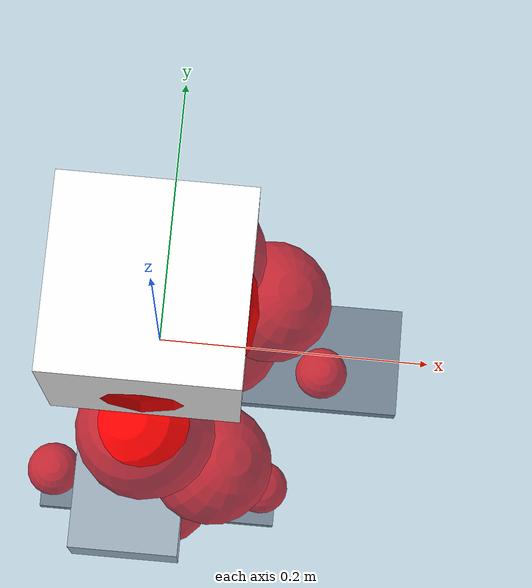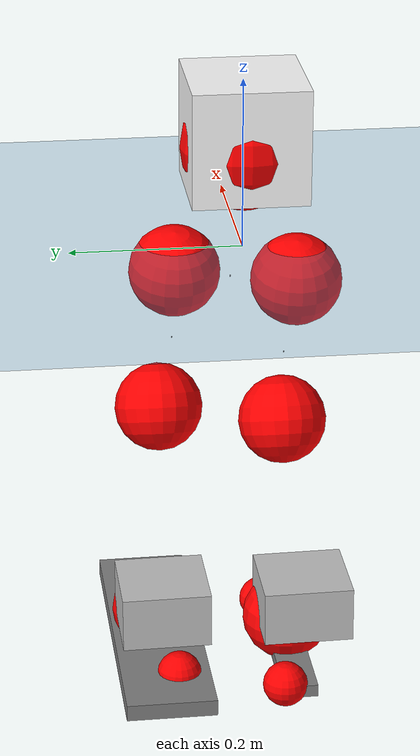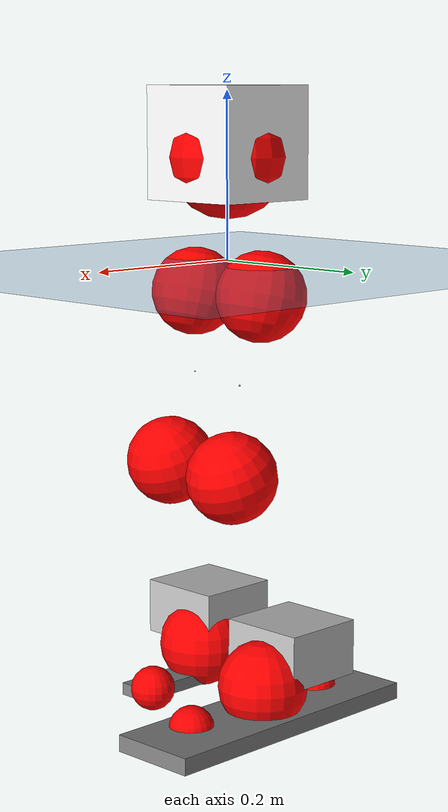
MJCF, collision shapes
<mujoco model="pi_12dof_release_v1">
  <compiler angle="radian" assetdir="assets" balanceinertia="true" inertiafromgeom="false"/>

  <option timestep="0.005" density="1.2" viscosity="2e-05"/>

  <size nkey="1"/>

  <visual>
    <quality shadowsize="8192"/>
    <map shadowclip="0.5"/>
  </visual>

  <default>
    <default class="/">
      <joint armature="0.01" damping="0.01" frictionloss="0.01"/>
      <geom contype="0" conaffinity="0" group="1" solref="-1000 -80"/>
      <site size="0.01 0.005 0.005" group="5"/>
      <general forcelimited="true" biastype="affine" gainprm="20" biasprm="0 -20 -0.5"/>
      <default class="foot">
        <geom size="0.0845 0.036 0.005" type="box" condim="6" group="4" priority="1" friction="0.9 0.2 0.2" solimp="0.015 1 0.005"/>
      </default>
      <default class="reward_collision_sphere">
        <geom group="5" rgba="1 0 0 1"/>
      </default>
    </default>
  </default>

  <asset>
    <texture type="skybox" colorspace="auto" name="//unnamed_texture_0" builtin="gradient" rgb1="0.95 0.95 0.95" rgb2="0.95 0.95 0.95" width="100" height="600"/>
    <texture type="2d" colorspace="auto" name="texplane" builtin="checker" rgb1="0.345 0.575 0.748" rgb2="0.345 0.575 0.748" markrgb="1 1 1" width="512" height="512"/>
    <material name="MatPlane" class="/" texture="texplane" texuniform="true" texrepeat="2 2" specular="0.9"/>
    <mesh name="baselink_1" class="/" file="baselink_1.STL"/>
    <mesh name="r_hip_pitch_link" class="/" file="r_hip_pitch_link.STL"/>
    <mesh name="r_hip_roll_link" class="/" file="r_hip_roll_link.STL"/>
    <mesh name="r_thigh_link" class="/" file="r_thigh_link.STL"/>
    <mesh name="r_calf_link" class="/" file="r_calf_link.STL"/>
    <mesh name="r_ankle_pitch_link" class="/" file="r_ankle_pitch_link.STL"/>
    <mesh name="r_ankle_roll_link" class="/" file="r_ankle_roll_link.STL"/>
    <mesh name="l_hip_pitch_link" class="/" file="l_hip_pitch_link.STL"/>
    <mesh name="l_hip_roll_link" class="/" file="l_hip_roll_link.STL"/>
    <mesh name="l_thigh_link" class="/" file="l_thigh_link.STL"/>
    <mesh name="l_calf_link" class="/" file="l_calf_link.STL"/>
    <mesh name="l_ankle_pitch_link" class="/" file="l_ankle_pitch_link.STL"/>
    <mesh name="l_ankle_roll_link" class="/" file="l_ankle_roll_link.STL"/>
  </asset>

  <worldbody>
    <geom name="floor" class="/" size="100 100 0.125" type="plane" group="0" material="MatPlane"/>
    <light name="toplight_shadow" class="/" pos="0 0 5" dir="0.0990148 0.0990148 -0.990148" type="directional" ambient="0.04 0.04 0.04" diffuse="0.55 0.55 0.55" specular="0.12 0.12 0.12"/>
    <light name="toplight_fill" class="/" pos="0 0 5" dir="0.0990148 0.0990148 -0.990148" type="directional" castshadow="false" ambient="0.04 0.04 0.04" diffuse="0.3 0.3 0.3" specular="0.08 0.08 0.08"/>
    <body name="trunk" pos="-0.00155855 -0.00108261 0.00996614" quat="1 0.000461806 -0.000375352 0.000786933">
      <inertial pos="0.0148329 0.012669 0.058165" quat="0.679681 -0.000617896 0.0245454 0.733096" mass="5.16322" diaginertia="0.0666829 0.00353055 0.0385757"/>
      <joint name="//unnamed_joint_0" type="free"/>
      <geom name="//unnamed_geom_1" class="/" type="mesh" density="0" rgba="1 1 1 1" mesh="baselink_1"/>
      <geom name="//unnamed_geom_2" class="/" size="0.0669492 0.0669492 0.0669492" pos="0 0 0.128748" type="box" rgba="1 1 1 1"/>
      <geom name="//unnamed_geom_3" class="reward_collision_sphere" size="0.0736441" pos="0 0 0.112655"/>
      <site name="imu" class="/" pos="0.0740957 0.0123538 -0.0631698" size="0.0133898"/>
      <camera name="track" class="/" pos="0 -1.71833 0" quat="0.707107 0.707107 0 0" mode="trackcom"/>
      <camera name="ego_camera" class="/" pos="0.116132 0 0.289683" quat="-0.5 -0.5 0.5 0.5"/>
      <body name="r_hip_pitch_link" pos="-0.00260757 -0.0140208 -0.0526337" quat="0.992445 -0.00245125 -0.122654 -0.00186312">
        <inertial pos="-0.0114797 -0.0399596 0.000572916" quat="0.00291097 0.701273 0.00859747 0.712835" mass="1.04061" diaginertia="0.00113688 4.59373e-05 0.000841919"/>
        <joint name="r_hip_pitch_joint" class="/" pos="0 0 0" axis="0.0400373 -0.997096 -0.0647796" range="-1.72508 1.52265" armature="0.0182763" damping="0.0867807" frictionloss="0.0171602"/>
        <geom name="//unnamed_geom_4" class="/" type="mesh" density="0" rgba="0.75294 0.75294 0.75294 1" mesh="r_hip_pitch_link"/>
        <geom name="//unnamed_geom_5" class="/" size="0.000669492 0.000669492 0.000669492" type="box" rgba="0.75294 0.75294 0.75294 1"/>
        <body name="r_hip_roll_link" pos="-0.0016577 -0.0474237 0.00141956" quat="1 3.86161e-05 0.000291955 0.000743458">
          <inertial pos="-0.00930806 -0.00054797 -0.11105" quat="0.696102 -0.0989281 -0.0844214 0.706065" mass="0.817586" diaginertia="0.00341969 0.000127726 0.00142107"/>
          <joint name="r_hip_roll_joint" class="/" pos="0 0 0" axis="-0.99733 0.0672239 -0.0285139" stiffness="0.0185716" range="0.139997 0.37947" armature="0.0180463" damping="0.00294651" frictionloss="0.00635412"/>
          <geom name="//unnamed_geom_6" class="/" type="mesh" density="0" rgba="0.75294 0.75294 0.75294 1" mesh="r_hip_roll_link"/>
          <geom name="//unnamed_geom_7" class="/" size="0.000669492 0.000669492 0.000669492" type="box" rgba="0.75294 0.75294 0.75294 1"/>
          <geom name="//unnamed_geom_8" class="reward_collision_sphere" size="0.0535593"/>
          <body name="r_thigh_link" pos="-0.011894 0.0118937 -0.0966227" quat="0.999984 -0.0022484 -0.00101971 0.00517848">
            <inertial pos="0.00409212 -0.00012327 -0.0723051" quat="0.735824 0.676822 0.00137735 0.0217472" mass="0.299939" diaginertia="0.00123168 4.43188e-05 0.000721042"/>
            <joint name="r_thigh_joint" class="/" pos="0 0 0" axis="0.0242646 -0.0395414 -0.998923" range="-0.416113 0.480745" armature="0.0145042" damping="0.000785013" frictionloss="0.0114616"/>
            <geom name="//unnamed_geom_9" class="/" type="mesh" density="0" rgba="0.75294 0.75294 0.75294 1" mesh="r_thigh_link"/>
            <geom name="//unnamed_geom_10" class="/" size="0.000669492 0.000669492 0.000669492" type="box" rgba="0.75294 0.75294 0.75294 1"/>
            <body name="r_calf_link" pos="0.00934322 -0.00422843 -0.111384" quat="0.94758 3.52857e-05 0.319518 7.57105e-05">
              <inertial pos="-0.0129071 0.000969339 -0.11353" quat="0.99998 -0.00379158 -0.00134365 0.00482811" mass="1.82462" diaginertia="0.0301838 0.00130056 0.00169268"/>
              <joint name="r_calf_joint" class="/" pos="0 0 0" axis="-0.0280916 -0.998841 -0.0390937" stiffness="0.0115991" range="-1.6274 0.484949" armature="0.0197688" damping="0" frictionloss="0.018406"/>
              <geom name="//unnamed_geom_11" class="/" type="mesh" density="0" rgba="0.75294 0.75294 0.75294 1" mesh="r_calf_link"/>
              <geom name="//unnamed_geom_12" class="/" size="0.000669492 0.000669492 0.000669492" type="box" rgba="0.75294 0.75294 0.75294 1"/>
              <geom name="//unnamed_geom_13" class="reward_collision_sphere" size="0.0535593"/>
              <body name="r_ankle_pitch_link" pos="0.00683054 -0.0135046 -0.21772" quat="0.980105 0.00146165 -0.198471 -0.000808035">
                <inertial pos="0.00752014 0.000333004 0.00145775" quat="0.00822756 0.73914 -0.0410325 0.672251" mass="0.562152" diaginertia="0.00304778 0.000104403 0.00133756"/>
                <joint name="r_ankle_pitch_joint" class="/" pos="0 0 0" axis="-0.0103972 -0.99979 -0.0176856" stiffness="0.0506612" range="-1.21467 0.434569" armature="0.0157947" damping="0.0746531" frictionloss="0.0138749"/>
                <geom name="//unnamed_geom_14" class="/" type="mesh" density="0" rgba="0.75294 0.75294 0.75294 1" mesh="r_ankle_pitch_link"/>
                <geom name="//unnamed_geom_15" class="/" size="0.0522204 0.0535593 0.0334746" type="box" rgba="0.75294 0.75294 0.75294 1"/>
                <body name="r_ankle_roll_link" pos="0.103874 0.0160241 -0.00635026" quat="1 -0.000437526 -0.000116463 0.000520048">
                  <inertial pos="-0.0377151 0.00103946 -0.0367659" quat="0.54217 0.405671 0.443515 0.587178" mass="1.26999" diaginertia="0.0117422 0.000544169 0.00298498"/>
                  <joint name="r_ankle_roll_joint" class="/" pos="0 0 0" axis="-0.999998 0.000188452 0.00177823" range="0.0406062 0.0264504" armature="0.0100362" damping="0.0764896" frictionloss="0.00518178"/>
                  <geom name="//unnamed_geom_16" class="/" type="mesh" density="0" rgba="0.75294 0.75294 0.75294 1" mesh="r_ankle_roll_link"/>
                  <geom name="//unnamed_geom_17" class="/" type="mesh" rgba="0.75294 0.75294 0.75294 1" mesh="r_ankle_roll_link"/>
                  <geom name="right_foot" class="foot" size="0.117456 0.0207357 0.00747683" pos="-0.07897 0 -0.0708115"/>
                  <geom name="//unnamed_geom_19" class="reward_collision_sphere" size="0.0535593" pos="-0.0774216 0 -0.032187"/>
                  <geom name="//unnamed_geom_20" class="reward_collision_sphere" size="0.0267797" pos="0.0232265 0.0171833 -0.0643741"/>
                  <geom name="//unnamed_geom_21" class="reward_collision_sphere" size="0.0267797" pos="-0.185812 0.0171833 -0.0643741"/>
                  <site name="right_foot" class="foot" pos="-0.07897 0 -0.0708115" size="0.0133898"/>
                </body>
              </body>
            </body>
          </body>
        </body>
      </body>
      <body name="l_hip_pitch_link" pos="0.0144709 0.0132623 -0.0518821" quat="0.9924 0.0014527 -0.123038 0.000949484">
        <inertial pos="-0.00568406 0.0336063 -0.00126594" quat="-0.0259108 0.716649 0.0684766 0.69358" mass="0.933203" diaginertia="0.00140779 4.64999e-05 0.00144943"/>
        <joint name="l_hip_pitch_joint" class="/" pos="0 0 0" axis="0.0183466 0.998558 0.0504566" stiffness="0.0239574" range="-0.98834 1.69417" armature="0.00409636" damping="0.073873" frictionloss="0.0155265"/>
        <geom name="//unnamed_geom_22" class="/" type="mesh" density="0" rgba="0.75294 0.75294 0.75294 1" mesh="l_hip_pitch_link"/>
        <geom name="//unnamed_geom_23" class="/" size="0.000669492 0.000669492 0.000669492" type="box" rgba="0.75294 0.75294 0.75294 1"/>
        <body name="l_hip_roll_link" pos="0.00928611 0.064317 0.00424597" quat="1 -0.000312505 -0.000759145 -2.50427e-05">
          <inertial pos="-0.00105739 -0.0112913 -0.0951278" quat="0.699671 -0.081939 -0.0783068 0.705418" mass="0.928679" diaginertia="0.00294336 0.000144953 0.00130624"/>
          <joint name="l_hip_roll_joint" class="/" pos="0 0 0" axis="-0.997366 -0.044345 0.0574035" range="-0.792499 -0.0712182" armature="0.0115576" damping="0.0320243" frictionloss="0.021842"/>
          <geom name="//unnamed_geom_24" class="/" type="mesh" density="0" rgba="0.75294 0.75294 0.75294 1" mesh="l_hip_roll_link"/>
          <geom name="//unnamed_geom_25" class="/" size="0.000669492 0.000669492 0.000669492" type="box" rgba="0.75294 0.75294 0.75294 1"/>
          <geom name="//unnamed_geom_26" class="reward_collision_sphere" size="0.0535593"/>
          <body name="l_thigh_link" pos="0.00941416 -0.000702018 -0.10541" quat="0.999995 0.000408653 -0.00283416 -0.00133801">
            <inertial pos="0.000699609 0.00047943 -0.0765245" quat="0.646098 0.760118 -0.0550942 0.0417378" mass="0.27134" diaginertia="0.00110787 4.35305e-05 0.000748969"/>
            <joint name="l_thigh_joint" class="/" pos="0 0 0" axis="0.0298791 -0.00701832 -0.999529" range="-0.426617 0.115478" armature="0.00859474" damping="0.0653916" frictionloss="0.00725286"/>
            <geom name="//unnamed_geom_27" class="/" type="mesh" density="0" rgba="0.75294 0.75294 0.75294 1" mesh="l_thigh_link"/>
            <geom name="//unnamed_geom_28" class="/" size="0.000669492 0.000669492 0.000669492" type="box" rgba="0.75294 0.75294 0.75294 1"/>
            <body name="l_calf_link" pos="-0.000789063 0.0132024 -0.106111" quat="0.947194 -0.00458985 0.320618 0.0026978">
              <inertial pos="0.0138231 0.00308851 -0.124482" quat="0.999742 -0.0113092 -0.0175647 0.00893528" mass="2.15751" diaginertia="0.0346373 0.00177696 0.00243085"/>
              <joint name="l_calf_joint" class="/" pos="0 0 0" axis="0.0277586 0.99956 0.0104363" stiffness="0.0264439" range="-0.770246 1.96661" armature="0.0212564" damping="0.00682199" frictionloss="0.0219307"/>
              <geom name="//unnamed_geom_29" class="/" type="mesh" density="0" rgba="0.75294 0.75294 0.75294 1" mesh="l_calf_link"/>
              <geom name="//unnamed_geom_30" class="/" size="0.000669492 0.000669492 0.000669492" type="box" rgba="0.75294 0.75294 0.75294 1"/>
              <geom name="//unnamed_geom_31" class="reward_collision_sphere" size="0.0535593"/>
              <body name="l_ankle_pitch_link" pos="-0.000855376 0.00738772 -0.238674" quat="0.980141 -0.000602802 -0.1983 -0.000130123">
                <inertial pos="-0.00291866 0.00313041 -0.00318372" quat="0.00094238 0.707599 0.000898978 0.706613" mass="0.593916" diaginertia="0.00376099 0.000123206 0.00146951"/>
                <joint name="l_ankle_pitch_joint" class="/" pos="0 0 0" axis="0.0281718 0.998466 -0.0476575" stiffness="0.00276508" range="-0.502178 1.33703" armature="0.0121777" damping="0.0657319" frictionloss="0.0027911"/>
                <geom name="//unnamed_geom_32" class="/" type="mesh" density="0" rgba="0.75294 0.75294 0.75294 1" mesh="l_ankle_pitch_link"/>
                <geom name="//unnamed_geom_33" class="/" size="0.0522204 0.0535593 0.0334746" type="box" rgba="0.75294 0.75294 0.75294 1"/>
                <body name="l_ankle_roll_link" pos="0.129546 0.0037569 -0.00310178" quat="0.999993 0.0034074 0.00048843 0.00143114">
                  <inertial pos="-0.0306777 -0.00228256 -0.0242734" quat="0.559132 0.441146 0.383058 0.588241" mass="1.19241" diaginertia="0.0109353 0.000405221 0.00298904"/>
                  <joint name="l_ankle_roll_joint" class="/" pos="0 0 0" axis="-0.999987 0.00203212 -0.00475639" range="-0.179039 0.174158" armature="0.0169016" damping="0.0021016" frictionloss="0.0228866"/>
                  <geom name="//unnamed_geom_34" class="/" type="mesh" density="0" rgba="0.75294 0.75294 0.75294 1" mesh="l_ankle_roll_link"/>
                  <geom name="//unnamed_geom_35" class="/" type="mesh" rgba="0.75294 0.75294 0.75294 1" mesh="l_ankle_roll_link"/>
                  <geom name="left_foot" class="foot" size="0.180714 0.0541927 0.0100446" pos="-0.07897 0 -0.0708115"/>
                  <geom name="//unnamed_geom_37" class="reward_collision_sphere" size="0.0535593" pos="-0.0774216 0 -0.032187"/>
                  <geom name="//unnamed_geom_38" class="reward_collision_sphere" size="0.0267797" pos="0.0232265 -0.0171833 -0.0643741"/>
                  <geom name="//unnamed_geom_39" class="reward_collision_sphere" size="0.0267797" pos="-0.185812 -0.0171833 -0.0643741"/>
                  <site name="left_foot" class="foot" pos="-0.07897 0 -0.0708115" size="0.0133898"/>
                </body>
              </body>
            </body>
          </body>
        </body>
      </body>
    </body>
  </worldbody>

  <contact>
    <pair class="/" geom1="floor" geom2="right_foot" name="//unnamed_contact_1"/>
    <pair class="/" geom1="floor" geom2="left_foot" name="//unnamed_contact_0"/>
  </contact>

  <actuator>
    <general name="r_hip_pitch_joint" class="/" joint="r_hip_pitch_joint" forcerange="-22.07 22.07" gainprm="28.6288" biasprm="0 -28.6288 -0.460751"/>
    <general name="r_hip_roll_joint" class="/" joint="r_hip_roll_joint" forcerange="-40.6555 40.6555" gainprm="28.6288" biasprm="0 -28.6288 -0.460751"/>
    <general name="r_thigh_joint" class="/" joint="r_thigh_joint" forcerange="-16.8859 16.8859" gainprm="28.6288" biasprm="0 -28.6288 -0.460751"/>
    <general name="r_calf_joint" class="/" joint="r_calf_joint" forcerange="-27.8418 27.8418" gainprm="28.6288" biasprm="0 -28.6288 -0.460751"/>
    <general name="r_ankle_pitch_joint" class="/" joint="r_ankle_pitch_joint" forcerange="-40.3619 40.3619" gainprm="28.6288" biasprm="0 -28.6288 -0.460751"/>
    <general name="r_ankle_roll_joint" class="/" joint="r_ankle_roll_joint" forcerange="-26.5661 26.5661" gainprm="28.6288" biasprm="0 -28.6288 -0.460751"/>
    <general name="l_hip_pitch_joint" class="/" joint="l_hip_pitch_joint" forcerange="-31.1952 31.1952" gainprm="28.6288" biasprm="0 -28.6288 -0.460751"/>
    <general name="l_hip_roll_joint" class="/" joint="l_hip_roll_joint" forcerange="-37.0246 37.0246" gainprm="28.6288" biasprm="0 -28.6288 -0.460751"/>
    <general name="l_thigh_joint" class="/" joint="l_thigh_joint" forcerange="-32.691 32.691" gainprm="28.6288" biasprm="0 -28.6288 -0.460751"/>
    <general name="l_calf_joint" class="/" joint="l_calf_joint" forcerange="-37.634 37.634" gainprm="28.6288" biasprm="0 -28.6288 -0.460751"/>
    <general name="l_ankle_pitch_joint" class="/" joint="l_ankle_pitch_joint" forcerange="-20.6517 20.6517" gainprm="28.6288" biasprm="0 -28.6288 -0.460751"/>
    <general name="l_ankle_roll_joint" class="/" joint="l_ankle_roll_joint" forcerange="-41.2236 41.2236" gainprm="28.6288" biasprm="0 -28.6288 -0.460751"/>
  </actuator>

  <sensor>
    <gyro site="imu" name="imu_angular_velocity"/>
    <velocimeter site="imu" name="imu_linear_velocity"/>
    <framelinvel objtype="site" objname="left_foot" name="left_foot_global_linear_velocity"/>
    <framelinvel objtype="site" objname="right_foot" name="right_foot_global_linear_velocity"/>
  </sensor>

  <keyframe>
    <key name="home" qpos="0 0 0.291 1 0 0 0 0.4 0 0 -0.8 0.4 0 -0.4 0 0 0.8 -0.4 0"/>
  </keyframe>
</mujoco>
